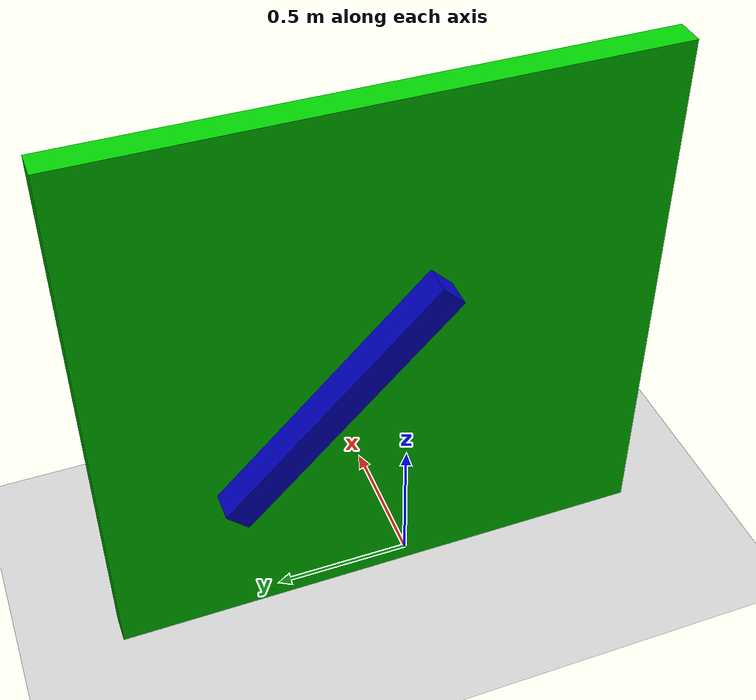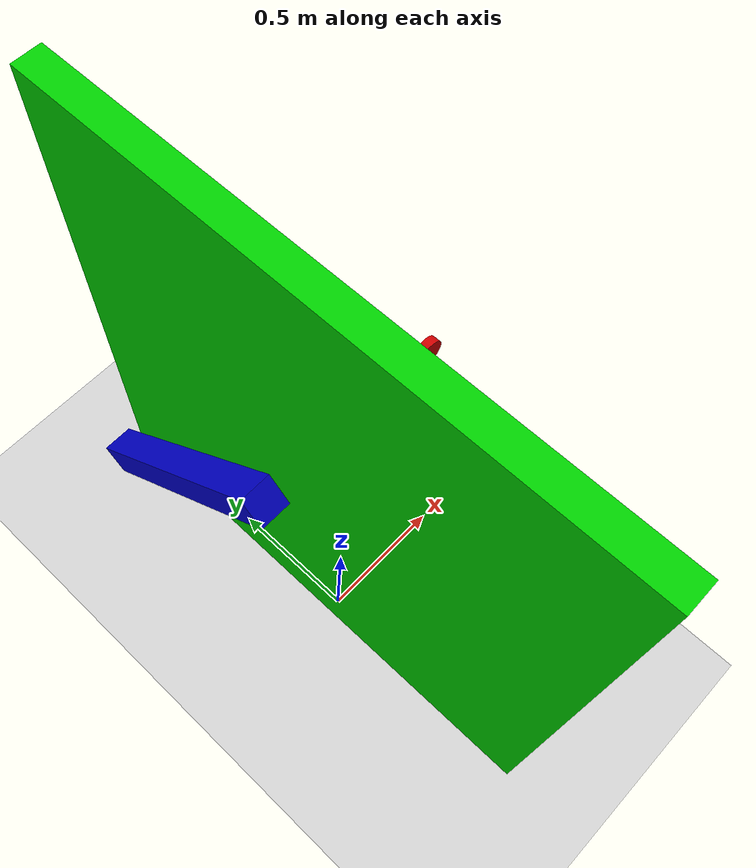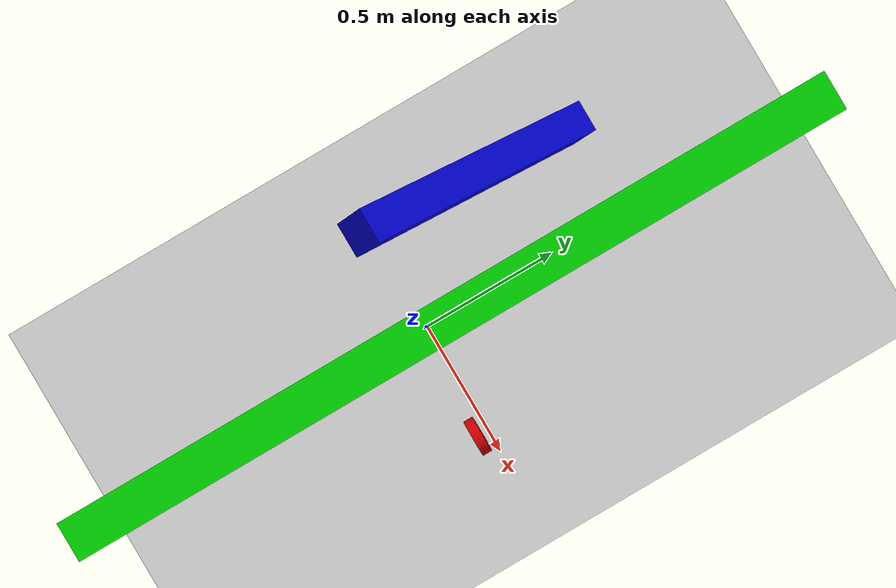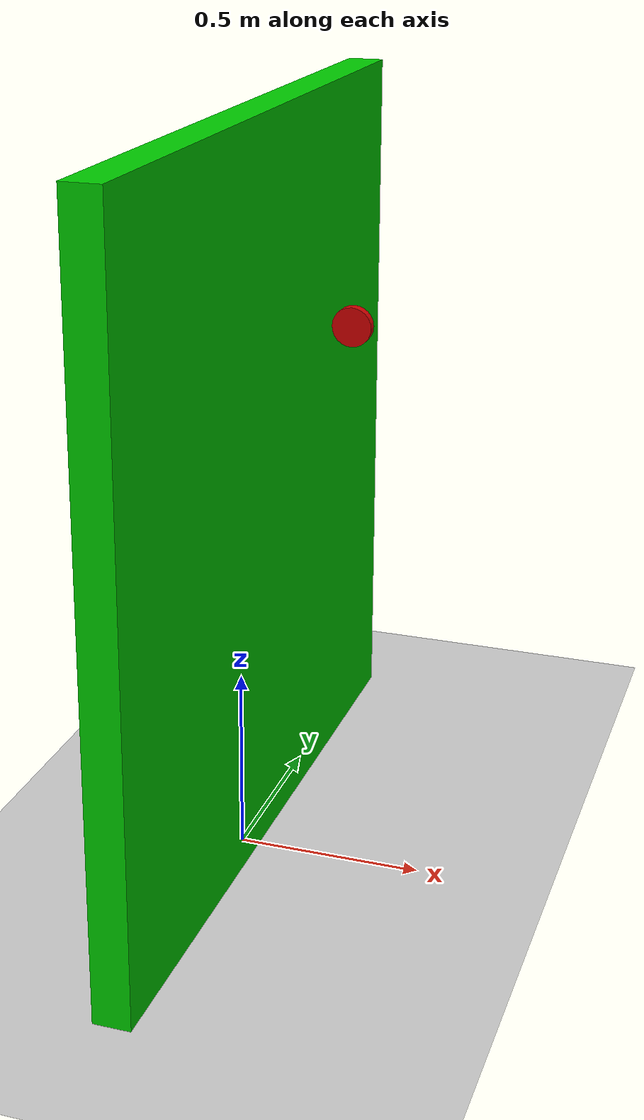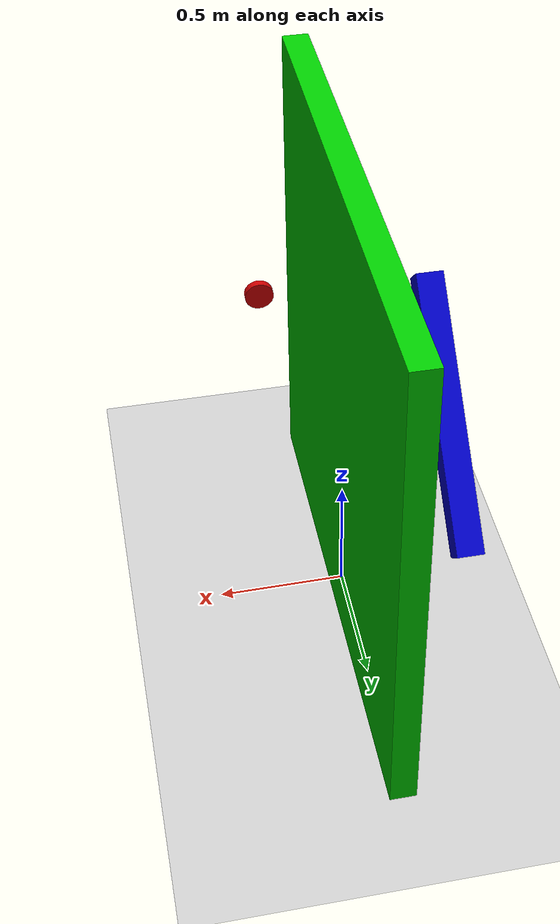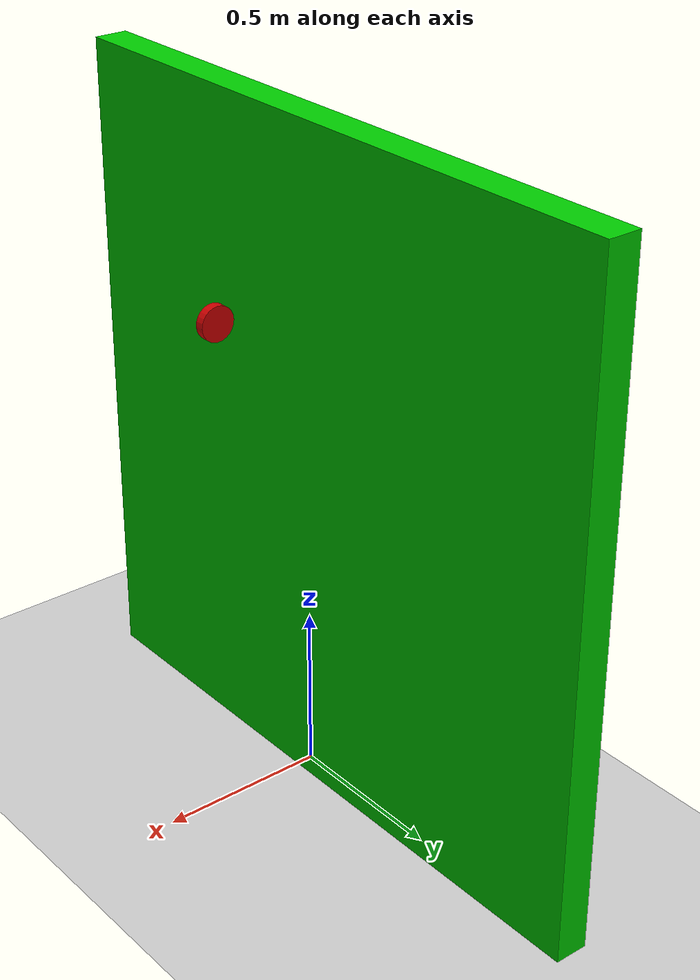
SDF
<?xml version="1.0" ?>
<sdf version="1.7">
  <world name="World">
    <!-- Physics definition -->
    <physics name="1ms" type="ignored">
      <max_step_size>0.001</max_step_size>
      <real_time_factor>1.0</real_time_factor>
    </physics>

    <!-- Physics plugin -->
    <plugin
      filename="libignition-gazebo-physics-system.so"
      name="ignition::gazebo::systems::Physics">
    </plugin>

    <!-- Creating, moving and deleting models plugin -->
    <plugin
      filename="libignition-gazebo-user-commands-system.so"
      name="ignition::gazebo::systems::UserCommands">
    </plugin>

    <!-- Shows the world scene -->
    <plugin
      filename="libignition-gazebo-scene-broadcaster-system.so"
      name="ignition::gazebo::systems::SceneBroadcaster">
    </plugin>

    <!-- IMU plugin -->
    <plugin
      filename="libignition-gazebo-imu-system.so"
      name="ignition::gazebo::systems::Imu">
    </plugin>

    <!-- sensors plugin -->
    <plugin
      filename="libignition-gazebo-sensors-system.so"
      name="ignition::gazebo::systems::Sensors">
    </plugin>

    <!-- Torque sensors plugin -->
    <plugin
      filename="ignition-gazebo-forcetorque-system"
      name="ignition::gazebo::systems::ForceTorque">
    </plugin>

    <!-- GUI configuration -->
    <gui fullscreen="0">
      <!-- 3D scene -->
      <plugin filename="GzScene3D" name="3D View">
        <ignition-gui>
          <title>3D View</title>
          <property type="bool" key="showTitleBar">true</property>
          <property type="string" key="state">docked</property>
        </ignition-gui>

        <engine>ogre2</engine>
        <scene>scene</scene>
        <ambient_light>1.0 1.0 1.0</ambient_light>
        <background_color>0.8 0.8 0.8</background_color>
        <camera_pose>-6 0 6 0 0.5 0</camera_pose>
      </plugin>

      <!-- World control -->
      <plugin filename="WorldControl" name="World control">
        <ignition-gui>
          <title>World control</title>
            <property type="bool" key="showTitleBar">false</property>
            <property type="bool" key="resizable">false</property>
            <property type="double" key="height">72</property>
            <property type="double" key="width">121</property>
            <property type="double" key="z">1</property>

            <property type="string" key="state">floating</property>
            <anchors target="3D View">
            <line own="left" target="left"/>
            <line own="bottom" target="bottom"/>
            </anchors>
        </ignition-gui>

        <play_pause>true</play_pause>
        <step>true</step>
        <start_paused>true</start_paused>
        <service>/world/world_demo/control</service>
        <stats_topic>/world/world_demo/stats</stats_topic>
      </plugin>

      <!-- World statistics -->
      <plugin filename="WorldStats" name="World stats">
        <ignition-gui>
            <title>World stats</title>
            <property type="bool" key="showTitleBar">false</property>
            <property type="bool" key="resizable">false</property>
            <property type="double" key="height">110</property>
            <property type="double" key="width">290</property>
            <property type="double" key="z">1</property>

            <property type="string" key="state">floating</property>
            <anchors target="3D View">
            <line own="right" target="right"/>
            <line own="bottom" target="bottom"/>
            </anchors>
        </ignition-gui>

        <sim_time>true</sim_time>
        <real_time>true</real_time>
        <real_time_factor>true</real_time_factor>
        <iterations>true</iterations>
        <topic>/world/world_demo/stats</topic>
      </plugin>

      <!-- Entity tree -->

      <!-- Topic viewer-->
      <plugin filename="TopicViewer" name="Topic viewer">
      </plugin>

      <!-- Plotting-->
      <plugin filename="Plotting" name="Plotting">
      </plugin>
    </gui>

    <!-- Light definition -->
    <light type="directional" name="sun">
      <cast_shadows>true</cast_shadows>
      <pose>0 0 10 0 0 0</pose>
      <diffuse>0.8 0.8 0.8 1</diffuse>
      <specular>0.2 0.2 0.2 1</specular>
      <attenuation>
        <range>1000</range>
        <constant>0.9</constant>
        <linear>0.01</linear>
        <quadratic>0.001</quadratic>
      </attenuation>
      <direction>-0.5 0.1 -0.9</direction>
    </light>

    <!-- Ground plane -->
    <model name="ground_plane">
      <static>true</static>
      <link name="link">
        <collision name="collision">
          <geometry>
            <plane>
              <normal>0 0 1</normal>
            </plane>
          </geometry>
        </collision>
        <visual name="visual">
          <geometry>
            <plane>
              <normal>0 0 1</normal>
              <size>100 100</size>
            </plane>
          </geometry>
          <material>
            <ambient>0.8 0.8 0.8 1</ambient>
            <diffuse>0.8 0.8 0.8 1</diffuse>
            <specular>0.8 0.8 0.8 1</specular>
          </material>
        </visual>
      </link>
    </model>

    <!-- Simple pendulum model -->
    <model name="Pendulum">
      <link name="base">
        <pose>0 0.1 1 0 0 0</pose>
        <visual name="base_visual">
          <geometry>
            <box><size>0.1 2 2</size></box>
          </geometry>
          <material>
            <ambient>0 0.8 0 1</ambient>
            <diffuse>0 0.8 0 1</diffuse>
            <specular>0 0.8 0 1</specular>
          </material>
        </visual>

        <collision name="base_collision">
          <geometry>
            <box><size>0.1 2 2</size></box>
          </geometry>
        </collision>

        <inertial>
          <mass>1</mass>
          <inertia>
            <ixx>1</ixx>
            <iyy>1</iyy>
            <izz>1</izz>
          </inertia>
        </inertial>
      </link>

      <!-- Pendulum arm -->
      <link name="arm">
        <pose>-0.3 0 1.5 0.7854 0 0</pose>
        <visual name="arm_visual">
          <pose>0 0 -0.5 0 0 0</pose>
          <geometry>
            <box><size>0.1 0.1 1</size></box>
          </geometry>
          <material>
            <ambient>0 0 0.8 1</ambient>
            <diffuse>0 0 0.8 1</diffuse>
            <specular>0 0 0.8 1</specular>
          </material>
        </visual>

        <collision name="arm_collision">
          <pose>0 0 -0.5 0 0 0</pose>
          <geometry>
            <box><size>0.1 0.1 1</size></box>
          </geometry>
        </collision>

        <inertial>
          <pose>0 0 -1.0 0 0 0</pose>
          <mass>1.0</mass>
          <inertia>
            <ixx>0.1</ixx>
            <ixy>0.0</ixy>
            <ixz>0.0</ixz>
            <iyy>0.1</iyy>
            <iyz>0.0</iyz>
            <izz>0.1</izz>
          </inertia>
        </inertial>
      </link>

      <!-- Flywheel -->
      <link name="flywheel">
        <pose degrees="true">0.3 0 1.5 90 0 0</pose>
        <visual name="flywheel_visual">
          <geometry>
            <cylinder>
              <radius>0.05</radius>
              <length>0.026</length>
            </cylinder>
          </geometry>
          <material>
            <ambient>0.8 0 0 1</ambient>
            <diffuse>0.8 0 0 1</diffuse>
            <specular>0.8 0 0 1</specular>
          </material>
        </visual>

        <collision name="flywheel_collision">
          <geometry>
            <cylinder>
              <radius>0.05</radius>
              <length>0.026</length>
            </cylinder>
          </geometry>
        </collision>

        <inertial>
          <mass>0.120</mass>
          <inertia>
            <ixx>0.000102</ixx>
            <iyy>0.000204</iyy>
            <izz>0.000102</izz>
          </inertia>
        </inertial>
      </link>

      <joint name="ground_fixed" type="fixed">
        <parent>world</parent>
        <child>base</child>
      </joint>

      <joint name="arm_joint" type="revolute">
        <parent>base</parent>
        <child>arm</child>
        <axis>
          <xyz expressed_in="arm">1 0 0</xyz>
          <limit>
              <lower>-1.79769e+308</lower>    <!-- negative infinity -->
              <upper>1.79769e+308</upper>     <!-- positive infinity -->
          </limit>
          <dynamics>
            <friction>0.0732352</friction>
            <damping>0.000931</damping>
          </dynamics>
        </axis>

        <sensor name='force_torque' type='force_torque'>
          <always_on>true</always_on>
          <topic>/torque_sensor</topic>
          <update_rate>30</update_rate>
          <force_torque>
            <frame>sensor</frame>
            <measure_direction>child_to_parent</measure_direction>
          </force_torque>
        </sensor>
      </joint>

      <joint name="flywheel_joint" type="revolute">
        <pose relative_to="flywheel"/>
        <parent>base</parent>
        <child>flywheel</child>
        <axis>
          <xyz expressed_in="__model__">0 1 0</xyz>
          <dynamics>
            <friction>0.0732352</friction>
            <damping>0.000931</damping>
          </dynamics>
          <limit>
              <lower>-1.79769e+308</lower>    <!-- negative infinity -->
              <upper>1.79769e+308</upper>     <!-- positive infinity -->
          </limit>
        </axis>
      </joint>

      <plugin filename="md25_plugin_o1"
        name="icai_crl_gazebo::MD25PluginO1">
        <left_joint>arm_joint</left_joint>
        <right_joint>flywheel_joint</right_joint>
        <encoder_rate>10</encoder_rate>
      </plugin>

    </model>

  </world>
</sdf>
